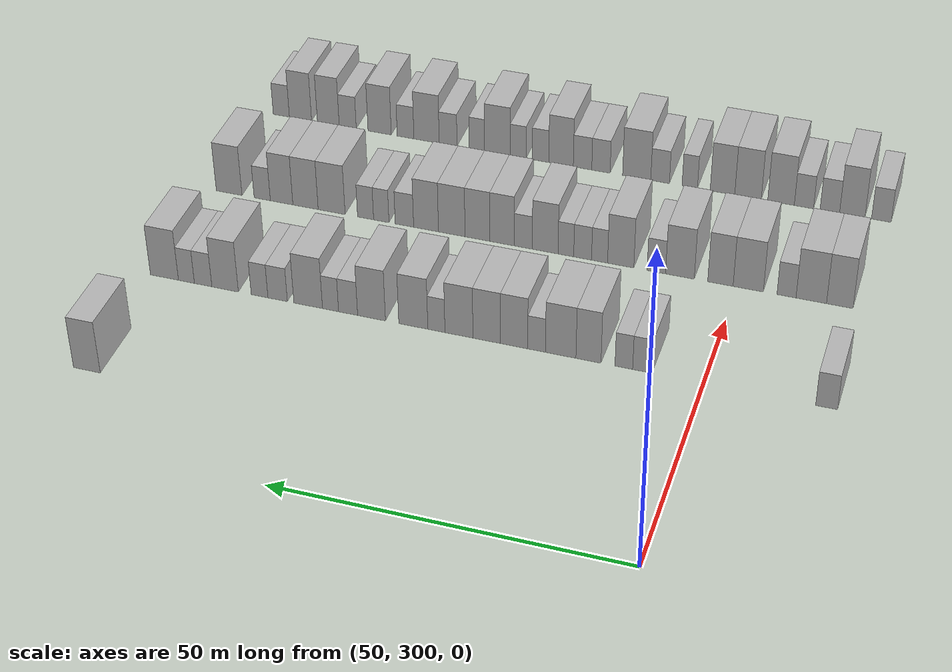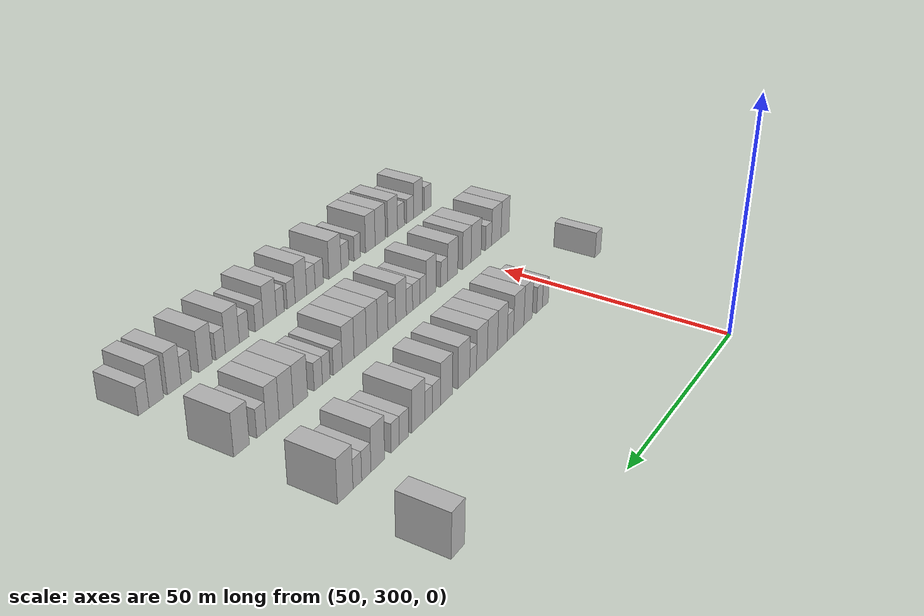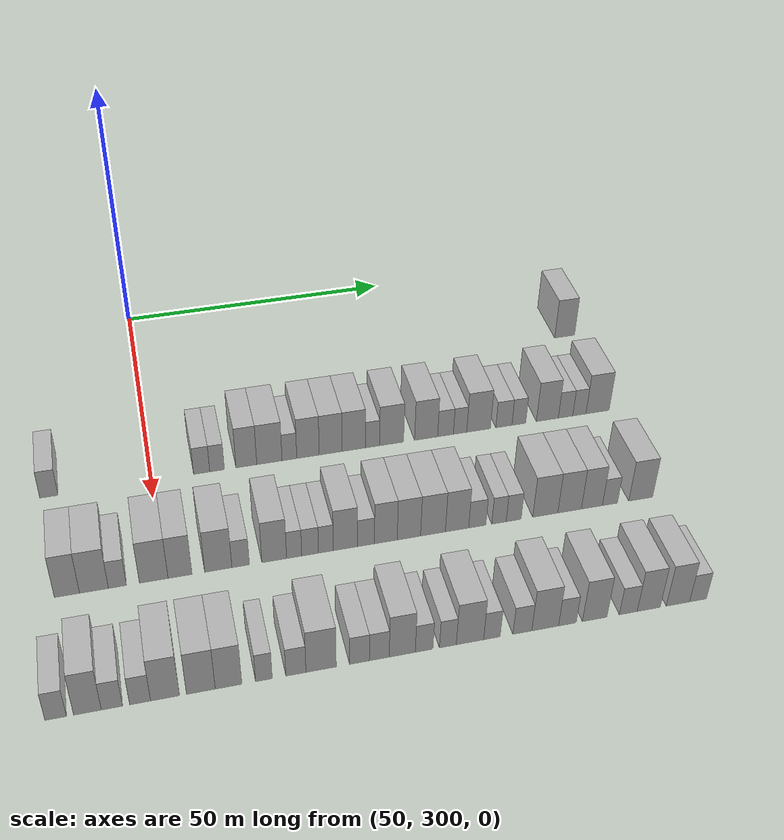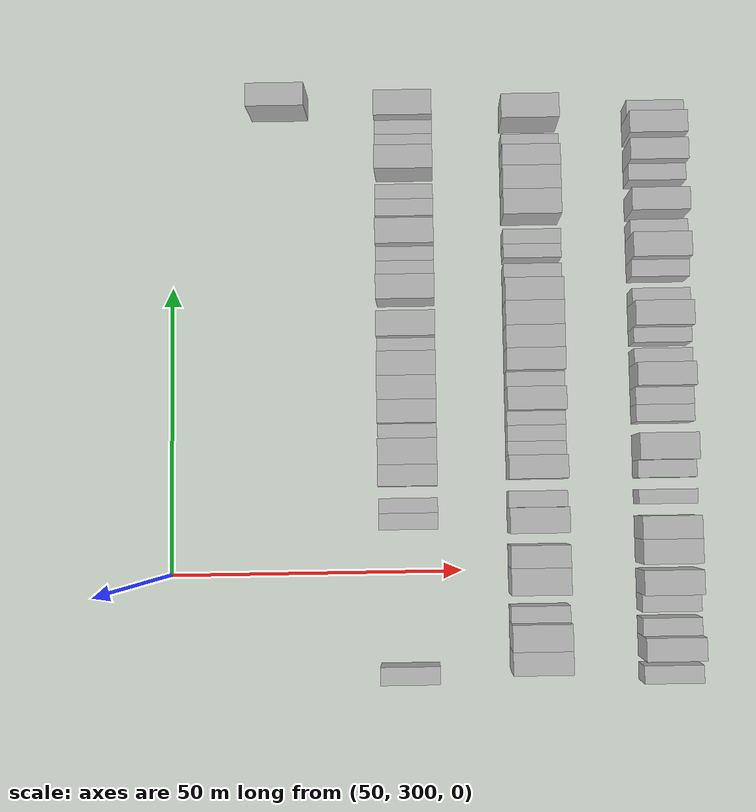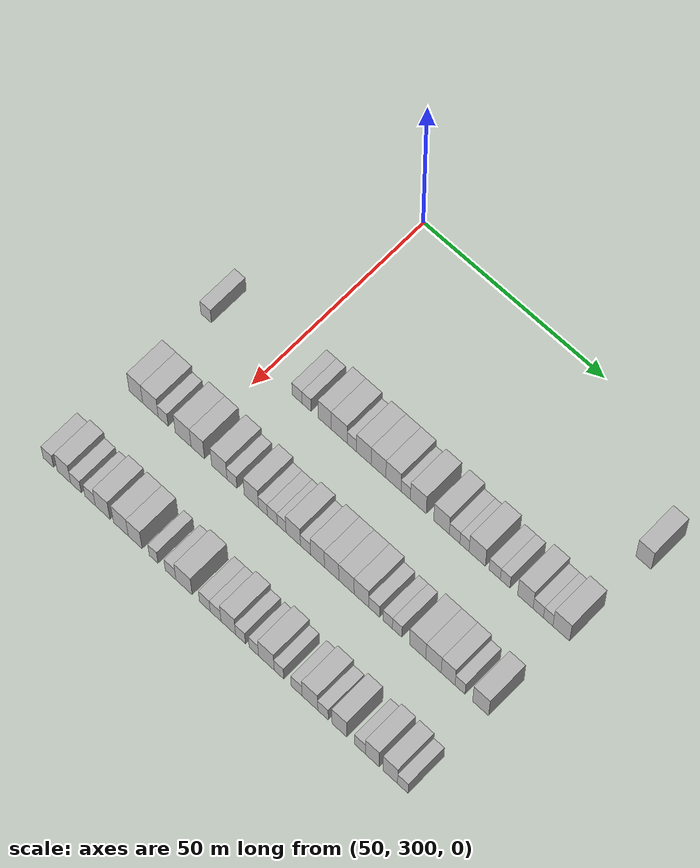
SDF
<sdf version="1.6">
 <world name="default">
  <model name="building_565">
   <static>1</static>
   <pose>69.0000 382.0958 0 0.000000 0.000000 0.000000</pose>
   <link name="link">
    <pose>0 0 4.50 0 0 0</pose>
    <collision name="collision"><geometry><box><size>10.0000 4.0528 9.0000</size></box></geometry></collision>
    <visual name="visual">
     <cast_shadows>0</cast_shadows>
     <geometry><box><size>10.0000 4.0528 9.0000</size></box></geometry>
     <material>
      <script>
       <uri>model://HANNAS_wall/materials/scripts</uri>
       <uri>model://HANNAS_wall/materials/textures</uri>
       <name>vrc/HANNAS_wall</name>
      </script>
     </material>
    </visual>
   </link>
  </model>
  <model name="building_740">
   <static>1</static>
   <pose>91.0000 283.0367 0 0.000000 0.000000 0.000000</pose>
   <link name="link">
    <pose>0 0 3.00 0 0 0</pose>
    <collision name="collision"><geometry><box><size>10.0000 2.9970 6.0000</size></box></geometry></collision>
    <visual name="visual">
     <cast_shadows>0</cast_shadows>
     <geometry><box><size>10.0000 2.9970 6.0000</size></box></geometry>
     <material>
      <script>
       <uri>model://HANNAS_wall/materials/scripts</uri>
       <uri>model://HANNAS_wall/materials/textures</uri>
       <name>vrc/HANNAS_wall</name>
      </script>
     </material>
    </visual>
   </link>
  </model>
  <model name="building_741">
   <static>1</static>
   <pose>91.0000 308.6828 0 0.000000 0.000000 0.000000</pose>
   <link name="link">
    <pose>0 0 3.00 0 0 0</pose>
    <collision name="collision"><geometry><box><size>10.0000 2.7650 6.0000</size></box></geometry></collision>
    <visual name="visual">
     <cast_shadows>0</cast_shadows>
     <geometry><box><size>10.0000 2.7650 6.0000</size></box></geometry>
     <material>
      <script>
       <uri>model://HANNAS_wall/materials/scripts</uri>
       <uri>model://HANNAS_wall/materials/textures</uri>
       <name>vrc/HANNAS_wall</name>
      </script>
     </material>
    </visual>
   </link>
  </model>
  <model name="building_742">
   <static>1</static>
   <pose>91.0000 311.3226 0 0.000000 0.000000 0.000000</pose>
   <link name="link">
    <pose>0 0 3.00 0 0 0</pose>
    <collision name="collision"><geometry><box><size>10.0000 2.5147 6.0000</size></box></geometry></collision>
    <visual name="visual">
     <cast_shadows>0</cast_shadows>
     <geometry><box><size>10.0000 2.5147 6.0000</size></box></geometry>
     <material>
      <script>
       <uri>model://HANNAS_wall/materials/scripts</uri>
       <uri>model://HANNAS_wall/materials/textures</uri>
       <name>vrc/HANNAS_wall</name>
      </script>
     </material>
    </visual>
   </link>
  </model>
  <model name="building_743">
   <static>1</static>
   <pose>91.0000 316.3813 0 0.000000 0.000000 0.000000</pose>
   <link name="link">
    <pose>0 0 4.50 0 0 0</pose>
    <collision name="collision"><geometry><box><size>10.0000 3.6027 9.0000</size></box></geometry></collision>
    <visual name="visual">
     <cast_shadows>0</cast_shadows>
     <geometry><box><size>10.0000 3.6027 9.0000</size></box></geometry>
     <material>
      <script>
       <uri>model://HANNAS_wall/materials/scripts</uri>
       <uri>model://HANNAS_wall/materials/textures</uri>
       <name>vrc/HANNAS_wall</name>
      </script>
     </material>
    </visual>
   </link>
  </model>
  <model name="building_744">
   <static>1</static>
   <pose>91.0000 320.3874 0 0.000000 0.000000 0.000000</pose>
   <link name="link">
    <pose>0 0 4.50 0 0 0</pose>
    <collision name="collision"><geometry><box><size>10.0000 4.4095 9.0000</size></box></geometry></collision>
    <visual name="visual">
     <cast_shadows>0</cast_shadows>
     <geometry><box><size>10.0000 4.4095 9.0000</size></box></geometry>
     <material>
      <script>
       <uri>model://HANNAS_wall/materials/scripts</uri>
       <uri>model://HANNAS_wall/materials/textures</uri>
       <name>vrc/HANNAS_wall</name>
      </script>
     </material>
    </visual>
   </link>
  </model>
  <model name="building_745">
   <static>1</static>
   <pose>91.0000 323.8801 0 0.000000 0.000000 0.000000</pose>
   <link name="link">
    <pose>0 0 3.00 0 0 0</pose>
    <collision name="collision"><geometry><box><size>10.0000 2.5758 6.0000</size></box></geometry></collision>
    <visual name="visual">
     <cast_shadows>0</cast_shadows>
     <geometry><box><size>10.0000 2.5758 6.0000</size></box></geometry>
     <material>
      <script>
       <uri>model://HANNAS_wall/materials/scripts</uri>
       <uri>model://HANNAS_wall/materials/textures</uri>
       <name>vrc/HANNAS_wall</name>
      </script>
     </material>
    </visual>
   </link>
  </model>
  <model name="building_746">
   <static>1</static>
   <pose>91.0000 327.1488 0 0.000000 0.000000 0.000000</pose>
   <link name="link">
    <pose>0 0 4.50 0 0 0</pose>
    <collision name="collision"><geometry><box><size>10.0000 3.9616 9.0000</size></box></geometry></collision>
    <visual name="visual">
     <cast_shadows>0</cast_shadows>
     <geometry><box><size>10.0000 3.9616 9.0000</size></box></geometry>
     <material>
      <script>
       <uri>model://HANNAS_wall/materials/scripts</uri>
       <uri>model://HANNAS_wall/materials/textures</uri>
       <name>vrc/HANNAS_wall</name>
      </script>
     </material>
    </visual>
   </link>
  </model>
  <model name="building_747">
   <static>1</static>
   <pose>91.0000 331.1592 0 0.000000 0.000000 0.000000</pose>
   <link name="link">
    <pose>0 0 4.50 0 0 0</pose>
    <collision name="collision"><geometry><box><size>10.0000 4.0594 9.0000</size></box></geometry></collision>
    <visual name="visual">
     <cast_shadows>0</cast_shadows>
     <geometry><box><size>10.0000 4.0594 9.0000</size></box></geometry>
     <material>
      <script>
       <uri>model://HANNAS_wall/materials/scripts</uri>
       <uri>model://HANNAS_wall/materials/textures</uri>
       <name>vrc/HANNAS_wall</name>
      </script>
     </material>
    </visual>
   </link>
  </model>
  <model name="building_748">
   <static>1</static>
   <pose>91.0000 335.2609 0 0.000000 0.000000 0.000000</pose>
   <link name="link">
    <pose>0 0 4.50 0 0 0</pose>
    <collision name="collision"><geometry><box><size>10.0000 4.1440 9.0000</size></box></geometry></collision>
    <visual name="visual">
     <cast_shadows>0</cast_shadows>
     <geometry><box><size>10.0000 4.1440 9.0000</size></box></geometry>
     <material>
      <script>
       <uri>model://HANNAS_wall/materials/scripts</uri>
       <uri>model://HANNAS_wall/materials/textures</uri>
       <name>vrc/HANNAS_wall</name>
      </script>
     </material>
    </visual>
   </link>
  </model>
  <model name="building_749">
   <static>1</static>
   <pose>91.0000 338.6061 0 0.000000 0.000000 0.000000</pose>
   <link name="link">
    <pose>0 0 3.00 0 0 0</pose>
    <collision name="collision"><geometry><box><size>10.0000 2.5464 6.0000</size></box></geometry></collision>
    <visual name="visual">
     <cast_shadows>0</cast_shadows>
     <geometry><box><size>10.0000 2.5464 6.0000</size></box></geometry>
     <material>
      <script>
       <uri>model://HANNAS_wall/materials/scripts</uri>
       <uri>model://HANNAS_wall/materials/textures</uri>
       <name>vrc/HANNAS_wall</name>
      </script>
     </material>
    </visual>
   </link>
  </model>
  <model name="building_750">
   <static>1</static>
   <pose>91.0000 342.0485 0 0.000000 0.000000 0.000000</pose>
   <link name="link">
    <pose>0 0 4.50 0 0 0</pose>
    <collision name="collision"><geometry><box><size>10.0000 4.3385 9.0000</size></box></geometry></collision>
    <visual name="visual">
     <cast_shadows>0</cast_shadows>
     <geometry><box><size>10.0000 4.3385 9.0000</size></box></geometry>
     <material>
      <script>
       <uri>model://HANNAS_wall/materials/scripts</uri>
       <uri>model://HANNAS_wall/materials/textures</uri>
       <name>vrc/HANNAS_wall</name>
      </script>
     </material>
    </visual>
   </link>
  </model>
  <model name="building_751">
   <static>1</static>
   <pose>91.0000 348.3240 0 0.000000 0.000000 0.000000</pose>
   <link name="link">
    <pose>0 0 4.50 0 0 0</pose>
    <collision name="collision"><geometry><box><size>10.0000 4.2125 9.0000</size></box></geometry></collision>
    <visual name="visual">
     <cast_shadows>0</cast_shadows>
     <geometry><box><size>10.0000 4.2125 9.0000</size></box></geometry>
     <material>
      <script>
       <uri>model://HANNAS_wall/materials/scripts</uri>
       <uri>model://HANNAS_wall/materials/textures</uri>
       <name>vrc/HANNAS_wall</name>
      </script>
     </material>
    </visual>
   </link>
  </model>
  <model name="building_752">
   <static>1</static>
   <pose>91.0000 351.8712 0 0.000000 0.000000 0.000000</pose>
   <link name="link">
    <pose>0 0 3.00 0 0 0</pose>
    <collision name="collision"><geometry><box><size>10.0000 2.8819 6.0000</size></box></geometry></collision>
    <visual name="visual">
     <cast_shadows>0</cast_shadows>
     <geometry><box><size>10.0000 2.8819 6.0000</size></box></geometry>
     <material>
      <script>
       <uri>model://HANNAS_wall/materials/scripts</uri>
       <uri>model://HANNAS_wall/materials/textures</uri>
       <name>vrc/HANNAS_wall</name>
      </script>
     </material>
    </visual>
   </link>
  </model>
  <model name="building_753">
   <static>1</static>
   <pose>91.0000 354.5384 0 0.000000 0.000000 0.000000</pose>
   <link name="link">
    <pose>0 0 3.00 0 0 0</pose>
    <collision name="collision"><geometry><box><size>10.0000 2.4525 6.0000</size></box></geometry></collision>
    <visual name="visual">
     <cast_shadows>0</cast_shadows>
     <geometry><box><size>10.0000 2.4525 6.0000</size></box></geometry>
     <material>
      <script>
       <uri>model://HANNAS_wall/materials/scripts</uri>
       <uri>model://HANNAS_wall/materials/textures</uri>
       <name>vrc/HANNAS_wall</name>
      </script>
     </material>
    </visual>
   </link>
  </model>
  <model name="building_754">
   <static>1</static>
   <pose>91.0000 357.9547 0 0.000000 0.000000 0.000000</pose>
   <link name="link">
    <pose>0 0 4.50 0 0 0</pose>
    <collision name="collision"><geometry><box><size>10.0000 4.3802 9.0000</size></box></geometry></collision>
    <visual name="visual">
     <cast_shadows>0</cast_shadows>
     <geometry><box><size>10.0000 4.3802 9.0000</size></box></geometry>
     <material>
      <script>
       <uri>model://HANNAS_wall/materials/scripts</uri>
       <uri>model://HANNAS_wall/materials/textures</uri>
       <name>vrc/HANNAS_wall</name>
      </script>
     </material>
    </visual>
   </link>
  </model>
  <model name="building_755">
   <static>1</static>
   <pose>91.0000 362.6447 0 0.000000 0.000000 0.000000</pose>
   <link name="link">
    <pose>0 0 3.00 0 0 0</pose>
    <collision name="collision"><geometry><box><size>10.0000 2.9997 6.0000</size></box></geometry></collision>
    <visual name="visual">
     <cast_shadows>0</cast_shadows>
     <geometry><box><size>10.0000 2.9997 6.0000</size></box></geometry>
     <material>
      <script>
       <uri>model://HANNAS_wall/materials/scripts</uri>
       <uri>model://HANNAS_wall/materials/textures</uri>
       <name>vrc/HANNAS_wall</name>
      </script>
     </material>
    </visual>
   </link>
  </model>
  <model name="building_756">
   <static>1</static>
   <pose>91.0000 365.4371 0 0.000000 0.000000 0.000000</pose>
   <link name="link">
    <pose>0 0 3.00 0 0 0</pose>
    <collision name="collision"><geometry><box><size>10.0000 2.5852 6.0000</size></box></geometry></collision>
    <visual name="visual">
     <cast_shadows>0</cast_shadows>
     <geometry><box><size>10.0000 2.5852 6.0000</size></box></geometry>
     <material>
      <script>
       <uri>model://HANNAS_wall/materials/scripts</uri>
       <uri>model://HANNAS_wall/materials/textures</uri>
       <name>vrc/HANNAS_wall</name>
      </script>
     </material>
    </visual>
   </link>
  </model>
  <model name="building_757">
   <static>1</static>
   <pose>91.0000 370.7987 0 0.000000 0.000000 0.000000</pose>
   <link name="link">
    <pose>0 0 4.50 0 0 0</pose>
    <collision name="collision"><geometry><box><size>10.0000 4.1378 9.0000</size></box></geometry></collision>
    <visual name="visual">
     <cast_shadows>0</cast_shadows>
     <geometry><box><size>10.0000 4.1378 9.0000</size></box></geometry>
     <material>
      <script>
       <uri>model://HANNAS_wall/materials/scripts</uri>
       <uri>model://HANNAS_wall/materials/textures</uri>
       <name>vrc/HANNAS_wall</name>
      </script>
     </material>
    </visual>
   </link>
  </model>
  <model name="building_758">
   <static>1</static>
   <pose>91.0000 374.2376 0 0.000000 0.000000 0.000000</pose>
   <link name="link">
    <pose>0 0 3.00 0 0 0</pose>
    <collision name="collision"><geometry><box><size>10.0000 2.7400 6.0000</size></box></geometry></collision>
    <visual name="visual">
     <cast_shadows>0</cast_shadows>
     <geometry><box><size>10.0000 2.7400 6.0000</size></box></geometry>
     <material>
      <script>
       <uri>model://HANNAS_wall/materials/scripts</uri>
       <uri>model://HANNAS_wall/materials/textures</uri>
       <name>vrc/HANNAS_wall</name>
      </script>
     </material>
    </visual>
   </link>
  </model>
  <model name="building_759">
   <static>1</static>
   <pose>91.0000 376.8636 0 0.000000 0.000000 0.000000</pose>
   <link name="link">
    <pose>0 0 3.00 0 0 0</pose>
    <collision name="collision"><geometry><box><size>10.0000 2.5119 6.0000</size></box></geometry></collision>
    <visual name="visual">
     <cast_shadows>0</cast_shadows>
     <geometry><box><size>10.0000 2.5119 6.0000</size></box></geometry>
     <material>
      <script>
       <uri>model://HANNAS_wall/materials/scripts</uri>
       <uri>model://HANNAS_wall/materials/textures</uri>
       <name>vrc/HANNAS_wall</name>
      </script>
     </material>
    </visual>
   </link>
  </model>
  <model name="building_760">
   <static>1</static>
   <pose>91.0000 380.3342 0 0.000000 0.000000 0.000000</pose>
   <link name="link">
    <pose>0 0 4.50 0 0 0</pose>
    <collision name="collision"><geometry><box><size>10.0000 4.4294 9.0000</size></box></geometry></collision>
    <visual name="visual">
     <cast_shadows>0</cast_shadows>
     <geometry><box><size>10.0000 4.4294 9.0000</size></box></geometry>
     <material>
      <script>
       <uri>model://HANNAS_wall/materials/scripts</uri>
       <uri>model://HANNAS_wall/materials/textures</uri>
       <name>vrc/HANNAS_wall</name>
      </script>
     </material>
    </visual>
   </link>
  </model>
  <model name="building_932">
   <static>1</static>
   <pose>113.0000 285.0774 0 0.000000 0.000000 0.000000</pose>
   <link name="link">
    <pose>0 0 4.50 0 0 0</pose>
    <collision name="collision"><geometry><box><size>10.0000 3.8269 9.0000</size></box></geometry></collision>
    <visual name="visual">
     <cast_shadows>0</cast_shadows>
     <geometry><box><size>10.0000 3.8269 9.0000</size></box></geometry>
     <material>
      <script>
       <uri>model://HANNAS_wall/materials/scripts</uri>
       <uri>model://HANNAS_wall/materials/textures</uri>
       <name>vrc/HANNAS_wall</name>
      </script>
     </material>
    </visual>
   </link>
  </model>
  <model name="building_933">
   <static>1</static>
   <pose>113.0000 289.2033 0 0.000000 0.000000 0.000000</pose>
   <link name="link">
    <pose>0 0 4.50 0 0 0</pose>
    <collision name="collision"><geometry><box><size>10.0000 4.4250 9.0000</size></box></geometry></collision>
    <visual name="visual">
     <cast_shadows>0</cast_shadows>
     <geometry><box><size>10.0000 4.4250 9.0000</size></box></geometry>
     <material>
      <script>
       <uri>model://HANNAS_wall/materials/scripts</uri>
       <uri>model://HANNAS_wall/materials/textures</uri>
       <name>vrc/HANNAS_wall</name>
      </script>
     </material>
    </visual>
   </link>
  </model>
  <model name="building_934">
   <static>1</static>
   <pose>113.0000 292.8037 0 0.000000 0.000000 0.000000</pose>
   <link name="link">
    <pose>0 0 3.00 0 0 0</pose>
    <collision name="collision"><geometry><box><size>10.0000 2.7757 6.0000</size></box></geometry></collision>
    <visual name="visual">
     <cast_shadows>0</cast_shadows>
     <geometry><box><size>10.0000 2.7757 6.0000</size></box></geometry>
     <material>
      <script>
       <uri>model://HANNAS_wall/materials/scripts</uri>
       <uri>model://HANNAS_wall/materials/textures</uri>
       <name>vrc/HANNAS_wall</name>
      </script>
     </material>
    </visual>
   </link>
  </model>
  <model name="building_935">
   <static>1</static>
   <pose>113.0000 298.4188 0 0.000000 0.000000 0.000000</pose>
   <link name="link">
    <pose>0 0 4.50 0 0 0</pose>
    <collision name="collision"><geometry><box><size>10.0000 4.4543 9.0000</size></box></geometry></collision>
    <visual name="visual">
     <cast_shadows>0</cast_shadows>
     <geometry><box><size>10.0000 4.4543 9.0000</size></box></geometry>
     <material>
      <script>
       <uri>model://HANNAS_wall/materials/scripts</uri>
       <uri>model://HANNAS_wall/materials/textures</uri>
       <name>vrc/HANNAS_wall</name>
      </script>
     </material>
    </visual>
   </link>
  </model>
  <model name="building_936">
   <static>1</static>
   <pose>113.0000 302.5252 0 0.000000 0.000000 0.000000</pose>
   <link name="link">
    <pose>0 0 4.50 0 0 0</pose>
    <collision name="collision"><geometry><box><size>10.0000 3.7585 9.0000</size></box></geometry></collision>
    <visual name="visual">
     <cast_shadows>0</cast_shadows>
     <geometry><box><size>10.0000 3.7585 9.0000</size></box></geometry>
     <material>
      <script>
       <uri>model://HANNAS_wall/materials/scripts</uri>
       <uri>model://HANNAS_wall/materials/textures</uri>
       <name>vrc/HANNAS_wall</name>
      </script>
     </material>
    </visual>
   </link>
  </model>
  <model name="building_937">
   <static>1</static>
   <pose>113.0000 308.5507 0 0.000000 0.000000 0.000000</pose>
   <link name="link">
    <pose>0 0 4.50 0 0 0</pose>
    <collision name="collision"><geometry><box><size>10.0000 4.2925 9.0000</size></box></geometry></collision>
    <visual name="visual">
     <cast_shadows>0</cast_shadows>
     <geometry><box><size>10.0000 4.2925 9.0000</size></box></geometry>
     <material>
      <script>
       <uri>model://HANNAS_wall/materials/scripts</uri>
       <uri>model://HANNAS_wall/materials/textures</uri>
       <name>vrc/HANNAS_wall</name>
      </script>
     </material>
    </visual>
   </link>
  </model>
  <model name="building_938">
   <static>1</static>
   <pose>113.0000 312.0844 0 0.000000 0.000000 0.000000</pose>
   <link name="link">
    <pose>0 0 3.00 0 0 0</pose>
    <collision name="collision"><geometry><box><size>10.0000 2.7751 6.0000</size></box></geometry></collision>
    <visual name="visual">
     <cast_shadows>0</cast_shadows>
     <geometry><box><size>10.0000 2.7751 6.0000</size></box></geometry>
     <material>
      <script>
       <uri>model://HANNAS_wall/materials/scripts</uri>
       <uri>model://HANNAS_wall/materials/textures</uri>
       <name>vrc/HANNAS_wall</name>
      </script>
     </material>
    </visual>
   </link>
  </model>
  <model name="building_939">
   <static>1</static>
   <pose>113.0000 317.4590 0 0.000000 0.000000 0.000000</pose>
   <link name="link">
    <pose>0 0 4.50 0 0 0</pose>
    <collision name="collision"><geometry><box><size>10.0000 3.9742 9.0000</size></box></geometry></collision>
    <visual name="visual">
     <cast_shadows>0</cast_shadows>
     <geometry><box><size>10.0000 3.9742 9.0000</size></box></geometry>
     <material>
      <script>
       <uri>model://HANNAS_wall/materials/scripts</uri>
       <uri>model://HANNAS_wall/materials/textures</uri>
       <name>vrc/HANNAS_wall</name>
      </script>
     </material>
    </visual>
   </link>
  </model>
  <model name="building_940">
   <static>1</static>
   <pose>113.0000 320.6649 0 0.000000 0.000000 0.000000</pose>
   <link name="link">
    <pose>0 0 3.00 0 0 0</pose>
    <collision name="collision"><geometry><box><size>10.0000 2.4376 6.0000</size></box></geometry></collision>
    <visual name="visual">
     <cast_shadows>0</cast_shadows>
     <geometry><box><size>10.0000 2.4376 6.0000</size></box></geometry>
     <material>
      <script>
       <uri>model://HANNAS_wall/materials/scripts</uri>
       <uri>model://HANNAS_wall/materials/textures</uri>
       <name>vrc/HANNAS_wall</name>
      </script>
     </material>
    </visual>
   </link>
  </model>
  <model name="building_941">
   <static>1</static>
   <pose>113.0000 323.2427 0 0.000000 0.000000 0.000000</pose>
   <link name="link">
    <pose>0 0 3.00 0 0 0</pose>
    <collision name="collision"><geometry><box><size>10.0000 2.7180 6.0000</size></box></geometry></collision>
    <visual name="visual">
     <cast_shadows>0</cast_shadows>
     <geometry><box><size>10.0000 2.7180 6.0000</size></box></geometry>
     <material>
      <script>
       <uri>model://HANNAS_wall/materials/scripts</uri>
       <uri>model://HANNAS_wall/materials/textures</uri>
       <name>vrc/HANNAS_wall</name>
      </script>
     </material>
    </visual>
   </link>
  </model>
  <model name="building_942">
   <static>1</static>
   <pose>113.0000 325.8022 0 0.000000 0.000000 0.000000</pose>
   <link name="link">
    <pose>0 0 3.00 0 0 0</pose>
    <collision name="collision"><geometry><box><size>10.0000 2.4008 6.0000</size></box></geometry></collision>
    <visual name="visual">
     <cast_shadows>0</cast_shadows>
     <geometry><box><size>10.0000 2.4008 6.0000</size></box></geometry>
     <material>
      <script>
       <uri>model://HANNAS_wall/materials/scripts</uri>
       <uri>model://HANNAS_wall/materials/textures</uri>
       <name>vrc/HANNAS_wall</name>
      </script>
     </material>
    </visual>
   </link>
  </model>
  <model name="building_943">
   <static>1</static>
   <pose>113.0000 328.9836 0 0.000000 0.000000 0.000000</pose>
   <link name="link">
    <pose>0 0 4.50 0 0 0</pose>
    <collision name="collision"><geometry><box><size>10.0000 3.9621 9.0000</size></box></geometry></collision>
    <visual name="visual">
     <cast_shadows>0</cast_shadows>
     <geometry><box><size>10.0000 3.9621 9.0000</size></box></geometry>
     <material>
      <script>
       <uri>model://HANNAS_wall/materials/scripts</uri>
       <uri>model://HANNAS_wall/materials/textures</uri>
       <name>vrc/HANNAS_wall</name>
      </script>
     </material>
    </visual>
   </link>
  </model>
  <model name="building_944">
   <static>1</static>
   <pose>113.0000 332.3561 0 0.000000 0.000000 0.000000</pose>
   <link name="link">
    <pose>0 0 3.00 0 0 0</pose>
    <collision name="collision"><geometry><box><size>10.0000 2.7828 6.0000</size></box></geometry></collision>
    <visual name="visual">
     <cast_shadows>0</cast_shadows>
     <geometry><box><size>10.0000 2.7828 6.0000</size></box></geometry>
     <material>
      <script>
       <uri>model://HANNAS_wall/materials/scripts</uri>
       <uri>model://HANNAS_wall/materials/textures</uri>
       <name>vrc/HANNAS_wall</name>
      </script>
     </material>
    </visual>
   </link>
  </model>
  <model name="building_945">
   <static>1</static>
   <pose>113.0000 335.6398 0 0.000000 0.000000 0.000000</pose>
   <link name="link">
    <pose>0 0 4.50 0 0 0</pose>
    <collision name="collision"><geometry><box><size>10.0000 3.7846 9.0000</size></box></geometry></collision>
    <visual name="visual">
     <cast_shadows>0</cast_shadows>
     <geometry><box><size>10.0000 3.7846 9.0000</size></box></geometry>
     <material>
      <script>
       <uri>model://HANNAS_wall/materials/scripts</uri>
       <uri>model://HANNAS_wall/materials/textures</uri>
       <name>vrc/HANNAS_wall</name>
      </script>
     </material>
    </visual>
   </link>
  </model>
  <model name="building_946">
   <static>1</static>
   <pose>113.0000 339.4766 0 0.000000 0.000000 0.000000</pose>
   <link name="link">
    <pose>0 0 4.50 0 0 0</pose>
    <collision name="collision"><geometry><box><size>10.0000 3.8890 9.0000</size></box></geometry></collision>
    <visual name="visual">
     <cast_shadows>0</cast_shadows>
     <geometry><box><size>10.0000 3.8890 9.0000</size></box></geometry>
     <material>
      <script>
       <uri>model://HANNAS_wall/materials/scripts</uri>
       <uri>model://HANNAS_wall/materials/textures</uri>
       <name>vrc/HANNAS_wall</name>
      </script>
     </material>
    </visual>
   </link>
  </model>
  <model name="building_947">
   <static>1</static>
   <pose>113.0000 343.5120 0 0.000000 0.000000 0.000000</pose>
   <link name="link">
    <pose>0 0 4.50 0 0 0</pose>
    <collision name="collision"><geometry><box><size>10.0000 4.1819 9.0000</size></box></geometry></collision>
    <visual name="visual">
     <cast_shadows>0</cast_shadows>
     <geometry><box><size>10.0000 4.1819 9.0000</size></box></geometry>
     <material>
      <script>
       <uri>model://HANNAS_wall/materials/scripts</uri>
       <uri>model://HANNAS_wall/materials/textures</uri>
       <name>vrc/HANNAS_wall</name>
      </script>
     </material>
    </visual>
   </link>
  </model>
  <model name="building_948">
   <static>1</static>
   <pose>113.0000 347.5703 0 0.000000 0.000000 0.000000</pose>
   <link name="link">
    <pose>0 0 4.50 0 0 0</pose>
    <collision name="collision"><geometry><box><size>10.0000 3.9347 9.0000</size></box></geometry></collision>
    <visual name="visual">
     <cast_shadows>0</cast_shadows>
     <geometry><box><size>10.0000 3.9347 9.0000</size></box></geometry>
     <material>
      <script>
       <uri>model://HANNAS_wall/materials/scripts</uri>
       <uri>model://HANNAS_wall/materials/textures</uri>
       <name>vrc/HANNAS_wall</name>
      </script>
     </material>
    </visual>
   </link>
  </model>
  <model name="building_949">
   <static>1</static>
   <pose>113.0000 350.9979 0 0.000000 0.000000 0.000000</pose>
   <link name="link">
    <pose>0 0 3.00 0 0 0</pose>
    <collision name="collision"><geometry><box><size>10.0000 2.9205 6.0000</size></box></geometry></collision>
    <visual name="visual">
     <cast_shadows>0</cast_shadows>
     <geometry><box><size>10.0000 2.9205 6.0000</size></box></geometry>
     <material>
      <script>
       <uri>model://HANNAS_wall/materials/scripts</uri>
       <uri>model://HANNAS_wall/materials/textures</uri>
       <name>vrc/HANNAS_wall</name>
      </script>
     </material>
    </visual>
   </link>
  </model>
  <model name="building_950">
   <static>1</static>
   <pose>113.0000 354.6879 0 0.000000 0.000000 0.000000</pose>
   <link name="link">
    <pose>0 0 3.00 0 0 0</pose>
    <collision name="collision"><geometry><box><size>10.0000 2.4596 6.0000</size></box></geometry></collision>
    <visual name="visual">
     <cast_shadows>0</cast_shadows>
     <geometry><box><size>10.0000 2.4596 6.0000</size></box></geometry>
     <material>
      <script>
       <uri>model://HANNAS_wall/materials/scripts</uri>
       <uri>model://HANNAS_wall/materials/textures</uri>
       <name>vrc/HANNAS_wall</name>
      </script>
     </material>
    </visual>
   </link>
  </model>
  <model name="building_951">
   <static>1</static>
   <pose>113.0000 357.2023 0 0.000000 0.000000 0.000000</pose>
   <link name="link">
    <pose>0 0 3.00 0 0 0</pose>
    <collision name="collision"><geometry><box><size>10.0000 2.5690 6.0000</size></box></geometry></collision>
    <visual name="visual">
     <cast_shadows>0</cast_shadows>
     <geometry><box><size>10.0000 2.5690 6.0000</size></box></geometry>
     <material>
      <script>
       <uri>model://HANNAS_wall/materials/scripts</uri>
       <uri>model://HANNAS_wall/materials/textures</uri>
       <name>vrc/HANNAS_wall</name>
      </script>
     </material>
    </visual>
   </link>
  </model>
  <model name="building_952">
   <static>1</static>
   <pose>113.0000 362.6643 0 0.000000 0.000000 0.000000</pose>
   <link name="link">
    <pose>0 0 4.50 0 0 0</pose>
    <collision name="collision"><geometry><box><size>10.0000 4.3551 9.0000</size></box></geometry></collision>
    <visual name="visual">
     <cast_shadows>0</cast_shadows>
     <geometry><box><size>10.0000 4.3551 9.0000</size></box></geometry>
     <material>
      <script>
       <uri>model://HANNAS_wall/materials/scripts</uri>
       <uri>model://HANNAS_wall/materials/textures</uri>
       <name>vrc/HANNAS_wall</name>
      </script>
     </material>
    </visual>
   </link>
  </model>
  <model name="building_953">
   <static>1</static>
   <pose>113.0000 366.8980 0 0.000000 0.000000 0.000000</pose>
   <link name="link">
    <pose>0 0 4.50 0 0 0</pose>
    <collision name="collision"><geometry><box><size>10.0000 4.1123 9.0000</size></box></geometry></collision>
    <visual name="visual">
     <cast_shadows>0</cast_shadows>
     <geometry><box><size>10.0000 4.1123 9.0000</size></box></geometry>
     <material>
      <script>
       <uri>model://HANNAS_wall/materials/scripts</uri>
       <uri>model://HANNAS_wall/materials/textures</uri>
       <name>vrc/HANNAS_wall</name>
      </script>
     </material>
    </visual>
   </link>
  </model>
  <model name="building_954">
   <static>1</static>
   <pose>113.0000 370.7966 0 0.000000 0.000000 0.000000</pose>
   <link name="link">
    <pose>0 0 4.50 0 0 0</pose>
    <collision name="collision"><geometry><box><size>10.0000 3.6850 9.0000</size></box></geometry></collision>
    <visual name="visual">
     <cast_shadows>0</cast_shadows>
     <geometry><box><size>10.0000 3.6850 9.0000</size></box></geometry>
     <material>
      <script>
       <uri>model://HANNAS_wall/materials/scripts</uri>
       <uri>model://HANNAS_wall/materials/textures</uri>
       <name>vrc/HANNAS_wall</name>
      </script>
     </material>
    </visual>
   </link>
  </model>
  <model name="building_955">
   <static>1</static>
   <pose>113.0000 373.9694 0 0.000000 0.000000 0.000000</pose>
   <link name="link">
    <pose>0 0 3.00 0 0 0</pose>
    <collision name="collision"><geometry><box><size>10.0000 2.6606 6.0000</size></box></geometry></collision>
    <visual name="visual">
     <cast_shadows>0</cast_shadows>
     <geometry><box><size>10.0000 2.6606 6.0000</size></box></geometry>
     <material>
      <script>
       <uri>model://HANNAS_wall/materials/scripts</uri>
       <uri>model://HANNAS_wall/materials/textures</uri>
       <name>vrc/HANNAS_wall</name>
      </script>
     </material>
    </visual>
   </link>
  </model>
  <model name="building_956">
   <static>1</static>
   <pose>113.0000 379.4231 0 0.000000 0.000000 0.000000</pose>
   <link name="link">
    <pose>0 0 4.50 0 0 0</pose>
    <collision name="collision"><geometry><box><size>10.0000 4.2468 9.0000</size></box></geometry></collision>
    <visual name="visual">
     <cast_shadows>0</cast_shadows>
     <geometry><box><size>10.0000 4.2468 9.0000</size></box></geometry>
     <material>
      <script>
       <uri>model://HANNAS_wall/materials/scripts</uri>
       <uri>model://HANNAS_wall/materials/textures</uri>
       <name>vrc/HANNAS_wall</name>
      </script>
     </material>
    </visual>
   </link>
  </model>
  <model name="building_1121">
   <static>1</static>
   <pose>135.0000 282.5866 0 0.000000 0.000000 0.000000</pose>
   <link name="link">
    <pose>0 0 3.00 0 0 0</pose>
    <collision name="collision"><geometry><box><size>10.0000 2.9673 6.0000</size></box></geometry></collision>
    <visual name="visual">
     <cast_shadows>0</cast_shadows>
     <geometry><box><size>10.0000 2.9673 6.0000</size></box></geometry>
     <material>
      <script>
       <uri>model://HANNAS_wall/materials/scripts</uri>
       <uri>model://HANNAS_wall/materials/textures</uri>
       <name>vrc/HANNAS_wall</name>
      </script>
     </material>
    </visual>
   </link>
  </model>
  <model name="building_1122">
   <static>1</static>
   <pose>135.0000 287.0010 0 0.000000 0.000000 0.000000</pose>
   <link name="link">
    <pose>0 0 4.50 0 0 0</pose>
    <collision name="collision"><geometry><box><size>10.0000 3.8615 9.0000</size></box></geometry></collision>
    <visual name="visual">
     <cast_shadows>0</cast_shadows>
     <geometry><box><size>10.0000 3.8615 9.0000</size></box></geometry>
     <material>
      <script>
       <uri>model://HANNAS_wall/materials/scripts</uri>
       <uri>model://HANNAS_wall/materials/textures</uri>
       <name>vrc/HANNAS_wall</name>
      </script>
     </material>
    </visual>
   </link>
  </model>
  <model name="building_1123">
   <static>1</static>
   <pose>135.0000 290.4216 0 0.000000 0.000000 0.000000</pose>
   <link name="link">
    <pose>0 0 3.00 0 0 0</pose>
    <collision name="collision"><geometry><box><size>10.0000 2.9798 6.0000</size></box></geometry></collision>
    <visual name="visual">
     <cast_shadows>0</cast_shadows>
     <geometry><box><size>10.0000 2.9798 6.0000</size></box></geometry>
     <material>
      <script>
       <uri>model://HANNAS_wall/materials/scripts</uri>
       <uri>model://HANNAS_wall/materials/textures</uri>
       <name>vrc/HANNAS_wall</name>
      </script>
     </material>
    </visual>
   </link>
  </model>
  <model name="building_1124">
   <static>1</static>
   <pose>135.0000 294.3892 0 0.000000 0.000000 0.000000</pose>
   <link name="link">
    <pose>0 0 3.00 0 0 0</pose>
    <collision name="collision"><geometry><box><size>10.0000 2.9553 6.0000</size></box></geometry></collision>
    <visual name="visual">
     <cast_shadows>0</cast_shadows>
     <geometry><box><size>10.0000 2.9553 6.0000</size></box></geometry>
     <material>
      <script>
       <uri>model://HANNAS_wall/materials/scripts</uri>
       <uri>model://HANNAS_wall/materials/textures</uri>
       <name>vrc/HANNAS_wall</name>
      </script>
     </material>
    </visual>
   </link>
  </model>
  <model name="building_1125">
   <static>1</static>
   <pose>135.0000 297.9226 0 0.000000 0.000000 0.000000</pose>
   <link name="link">
    <pose>0 0 4.50 0 0 0</pose>
    <collision name="collision"><geometry><box><size>10.0000 4.1115 9.0000</size></box></geometry></collision>
    <visual name="visual">
     <cast_shadows>0</cast_shadows>
     <geometry><box><size>10.0000 4.1115 9.0000</size></box></geometry>
     <material>
      <script>
       <uri>model://HANNAS_wall/materials/scripts</uri>
       <uri>model://HANNAS_wall/materials/textures</uri>
       <name>vrc/HANNAS_wall</name>
      </script>
     </material>
    </visual>
   </link>
  </model>
  <model name="building_1126">
   <static>1</static>
   <pose>135.0000 303.0449 0 0.000000 0.000000 0.000000</pose>
   <link name="link">
    <pose>0 0 4.50 0 0 0</pose>
    <collision name="collision"><geometry><box><size>10.0000 4.1332 9.0000</size></box></geometry></collision>
    <visual name="visual">
     <cast_shadows>0</cast_shadows>
     <geometry><box><size>10.0000 4.1332 9.0000</size></box></geometry>
     <material>
      <script>
       <uri>model://HANNAS_wall/materials/scripts</uri>
       <uri>model://HANNAS_wall/materials/textures</uri>
       <name>vrc/HANNAS_wall</name>
      </script>
     </material>
    </visual>
   </link>
  </model>
  <model name="building_1127">
   <static>1</static>
   <pose>135.0000 307.0334 0 0.000000 0.000000 0.000000</pose>
   <link name="link">
    <pose>0 0 4.50 0 0 0</pose>
    <collision name="collision"><geometry><box><size>10.0000 3.8437 9.0000</size></box></geometry></collision>
    <visual name="visual">
     <cast_shadows>0</cast_shadows>
     <geometry><box><size>10.0000 3.8437 9.0000</size></box></geometry>
     <material>
      <script>
       <uri>model://HANNAS_wall/materials/scripts</uri>
       <uri>model://HANNAS_wall/materials/textures</uri>
       <name>vrc/HANNAS_wall</name>
      </script>
     </material>
    </visual>
   </link>
  </model>
  <model name="building_1128">
   <static>1</static>
   <pose>135.0000 312.1710 0 0.000000 0.000000 0.000000</pose>
   <link name="link">
    <pose>0 0 3.00 0 0 0</pose>
    <collision name="collision"><geometry><box><size>10.0000 2.4315 6.0000</size></box></geometry></collision>
    <visual name="visual">
     <cast_shadows>0</cast_shadows>
     <geometry><box><size>10.0000 2.4315 6.0000</size></box></geometry>
     <material>
      <script>
       <uri>model://HANNAS_wall/materials/scripts</uri>
       <uri>model://HANNAS_wall/materials/textures</uri>
       <name>vrc/HANNAS_wall</name>
      </script>
     </material>
    </visual>
   </link>
  </model>
  <model name="building_1129">
   <static>1</static>
   <pose>135.0000 316.8689 0 0.000000 0.000000 0.000000</pose>
   <link name="link">
    <pose>0 0 3.00 0 0 0</pose>
    <collision name="collision"><geometry><box><size>10.0000 2.9643 6.0000</size></box></geometry></collision>
    <visual name="visual">
     <cast_shadows>0</cast_shadows>
     <geometry><box><size>10.0000 2.9643 6.0000</size></box></geometry>
     <material>
      <script>
       <uri>model://HANNAS_wall/materials/scripts</uri>
       <uri>model://HANNAS_wall/materials/textures</uri>
       <name>vrc/HANNAS_wall</name>
      </script>
     </material>
    </visual>
   </link>
  </model>
  <model name="building_1130">
   <static>1</static>
   <pose>135.0000 320.5944 0 0.000000 0.000000 0.000000</pose>
   <link name="link">
    <pose>0 0 4.50 0 0 0</pose>
    <collision name="collision"><geometry><box><size>10.0000 4.4867 9.0000</size></box></geometry></collision>
    <visual name="visual">
     <cast_shadows>0</cast_shadows>
     <geometry><box><size>10.0000 4.4867 9.0000</size></box></geometry>
     <material>
      <script>
       <uri>model://HANNAS_wall/materials/scripts</uri>
       <uri>model://HANNAS_wall/materials/textures</uri>
       <name>vrc/HANNAS_wall</name>
      </script>
     </material>
    </visual>
   </link>
  </model>
  <model name="building_1131">
   <static>1</static>
   <pose>135.0000 326.3142 0 0.000000 0.000000 0.000000</pose>
   <link name="link">
    <pose>0 0 3.00 0 0 0</pose>
    <collision name="collision"><geometry><box><size>10.0000 2.9528 6.0000</size></box></geometry></collision>
    <visual name="visual">
     <cast_shadows>0</cast_shadows>
     <geometry><box><size>10.0000 2.9528 6.0000</size></box></geometry>
     <material>
      <script>
       <uri>model://HANNAS_wall/materials/scripts</uri>
       <uri>model://HANNAS_wall/materials/textures</uri>
       <name>vrc/HANNAS_wall</name>
      </script>
     </material>
    </visual>
   </link>
  </model>
  <model name="building_1132">
   <static>1</static>
   <pose>135.0000 329.2833 0 0.000000 0.000000 0.000000</pose>
   <link name="link">
    <pose>0 0 3.00 0 0 0</pose>
    <collision name="collision"><geometry><box><size>10.0000 2.9854 6.0000</size></box></geometry></collision>
    <visual name="visual">
     <cast_shadows>0</cast_shadows>
     <geometry><box><size>10.0000 2.9854 6.0000</size></box></geometry>
     <material>
      <script>
       <uri>model://HANNAS_wall/materials/scripts</uri>
       <uri>model://HANNAS_wall/materials/textures</uri>
       <name>vrc/HANNAS_wall</name>
      </script>
     </material>
    </visual>
   </link>
  </model>
  <model name="building_1133">
   <static>1</static>
   <pose>135.0000 332.7592 0 0.000000 0.000000 0.000000</pose>
   <link name="link">
    <pose>0 0 4.50 0 0 0</pose>
    <collision name="collision"><geometry><box><size>10.0000 3.9664 9.0000</size></box></geometry></collision>
    <visual name="visual">
     <cast_shadows>0</cast_shadows>
     <geometry><box><size>10.0000 3.9664 9.0000</size></box></geometry>
     <material>
      <script>
       <uri>model://HANNAS_wall/materials/scripts</uri>
       <uri>model://HANNAS_wall/materials/textures</uri>
       <name>vrc/HANNAS_wall</name>
      </script>
     </material>
    </visual>
   </link>
  </model>
  <model name="building_1134">
   <static>1</static>
   <pose>135.0000 336.0897 0 0.000000 0.000000 0.000000</pose>
   <link name="link">
    <pose>0 0 3.00 0 0 0</pose>
    <collision name="collision"><geometry><box><size>10.0000 2.6946 6.0000</size></box></geometry></collision>
    <visual name="visual">
     <cast_shadows>0</cast_shadows>
     <geometry><box><size>10.0000 2.6946 6.0000</size></box></geometry>
     <material>
      <script>
       <uri>model://HANNAS_wall/materials/scripts</uri>
       <uri>model://HANNAS_wall/materials/textures</uri>
       <name>vrc/HANNAS_wall</name>
      </script>
     </material>
    </visual>
   </link>
  </model>
  <model name="building_1135">
   <static>1</static>
   <pose>135.0000 339.7320 0 0.000000 0.000000 0.000000</pose>
   <link name="link">
    <pose>0 0 3.00 0 0 0</pose>
    <collision name="collision"><geometry><box><size>10.0000 2.5900 6.0000</size></box></geometry></collision>
    <visual name="visual">
     <cast_shadows>0</cast_shadows>
     <geometry><box><size>10.0000 2.5900 6.0000</size></box></geometry>
     <material>
      <script>
       <uri>model://HANNAS_wall/materials/scripts</uri>
       <uri>model://HANNAS_wall/materials/textures</uri>
       <name>vrc/HANNAS_wall</name>
      </script>
     </material>
    </visual>
   </link>
  </model>
  <model name="building_1136">
   <static>1</static>
   <pose>135.0000 343.1468 0 0.000000 0.000000 0.000000</pose>
   <link name="link">
    <pose>0 0 4.50 0 0 0</pose>
    <collision name="collision"><geometry><box><size>10.0000 4.2396 9.0000</size></box></geometry></collision>
    <visual name="visual">
     <cast_shadows>0</cast_shadows>
     <geometry><box><size>10.0000 4.2396 9.0000</size></box></geometry>
     <material>
      <script>
       <uri>model://HANNAS_wall/materials/scripts</uri>
       <uri>model://HANNAS_wall/materials/textures</uri>
       <name>vrc/HANNAS_wall</name>
      </script>
     </material>
    </visual>
   </link>
  </model>
  <model name="building_1137">
   <static>1</static>
   <pose>135.0000 346.5462 0 0.000000 0.000000 0.000000</pose>
   <link name="link">
    <pose>0 0 3.00 0 0 0</pose>
    <collision name="collision"><geometry><box><size>10.0000 2.5592 6.0000</size></box></geometry></collision>
    <visual name="visual">
     <cast_shadows>0</cast_shadows>
     <geometry><box><size>10.0000 2.5592 6.0000</size></box></geometry>
     <material>
      <script>
       <uri>model://HANNAS_wall/materials/scripts</uri>
       <uri>model://HANNAS_wall/materials/textures</uri>
       <name>vrc/HANNAS_wall</name>
      </script>
     </material>
    </visual>
   </link>
  </model>
  <model name="building_1138">
   <static>1</static>
   <pose>135.0000 351.3084 0 0.000000 0.000000 0.000000</pose>
   <link name="link">
    <pose>0 0 3.00 0 0 0</pose>
    <collision name="collision"><geometry><box><size>10.0000 2.9651 6.0000</size></box></geometry></collision>
    <visual name="visual">
     <cast_shadows>0</cast_shadows>
     <geometry><box><size>10.0000 2.9651 6.0000</size></box></geometry>
     <material>
      <script>
       <uri>model://HANNAS_wall/materials/scripts</uri>
       <uri>model://HANNAS_wall/materials/textures</uri>
       <name>vrc/HANNAS_wall</name>
      </script>
     </material>
    </visual>
   </link>
  </model>
  <model name="building_1139">
   <static>1</static>
   <pose>135.0000 354.9049 0 0.000000 0.000000 0.000000</pose>
   <link name="link">
    <pose>0 0 4.50 0 0 0</pose>
    <collision name="collision"><geometry><box><size>10.0000 4.2279 9.0000</size></box></geometry></collision>
    <visual name="visual">
     <cast_shadows>0</cast_shadows>
     <geometry><box><size>10.0000 4.2279 9.0000</size></box></geometry>
     <material>
      <script>
       <uri>model://HANNAS_wall/materials/scripts</uri>
       <uri>model://HANNAS_wall/materials/textures</uri>
       <name>vrc/HANNAS_wall</name>
      </script>
     </material>
    </visual>
   </link>
  </model>
  <model name="building_1140">
   <static>1</static>
   <pose>135.0000 358.4222 0 0.000000 0.000000 0.000000</pose>
   <link name="link">
    <pose>0 0 3.00 0 0 0</pose>
    <collision name="collision"><geometry><box><size>10.0000 2.8066 6.0000</size></box></geometry></collision>
    <visual name="visual">
     <cast_shadows>0</cast_shadows>
     <geometry><box><size>10.0000 2.8066 6.0000</size></box></geometry>
     <material>
      <script>
       <uri>model://HANNAS_wall/materials/scripts</uri>
       <uri>model://HANNAS_wall/materials/textures</uri>
       <name>vrc/HANNAS_wall</name>
      </script>
     </material>
    </visual>
   </link>
  </model>
  <model name="building_1141">
   <static>1</static>
   <pose>135.0000 362.7913 0 0.000000 0.000000 0.000000</pose>
   <link name="link">
    <pose>0 0 4.50 0 0 0</pose>
    <collision name="collision"><geometry><box><size>10.0000 3.9316 9.0000</size></box></geometry></collision>
    <visual name="visual">
     <cast_shadows>0</cast_shadows>
     <geometry><box><size>10.0000 3.9316 9.0000</size></box></geometry>
     <material>
      <script>
       <uri>model://HANNAS_wall/materials/scripts</uri>
       <uri>model://HANNAS_wall/materials/textures</uri>
       <name>vrc/HANNAS_wall</name>
      </script>
     </material>
    </visual>
   </link>
  </model>
  <model name="building_1142">
   <static>1</static>
   <pose>135.0000 368.2075 0 0.000000 0.000000 0.000000</pose>
   <link name="link">
    <pose>0 0 3.00 0 0 0</pose>
    <collision name="collision"><geometry><box><size>10.0000 2.9009 6.0000</size></box></geometry></collision>
    <visual name="visual">
     <cast_shadows>0</cast_shadows>
     <geometry><box><size>10.0000 2.9009 6.0000</size></box></geometry>
     <material>
      <script>
       <uri>model://HANNAS_wall/materials/scripts</uri>
       <uri>model://HANNAS_wall/materials/textures</uri>
       <name>vrc/HANNAS_wall</name>
      </script>
     </material>
    </visual>
   </link>
  </model>
  <model name="building_1143">
   <static>1</static>
   <pose>135.0000 371.5226 0 0.000000 0.000000 0.000000</pose>
   <link name="link">
    <pose>0 0 4.50 0 0 0</pose>
    <collision name="collision"><geometry><box><size>10.0000 3.7293 9.0000</size></box></geometry></collision>
    <visual name="visual">
     <cast_shadows>0</cast_shadows>
     <geometry><box><size>10.0000 3.7293 9.0000</size></box></geometry>
     <material>
      <script>
       <uri>model://HANNAS_wall/materials/scripts</uri>
       <uri>model://HANNAS_wall/materials/textures</uri>
       <name>vrc/HANNAS_wall</name>
      </script>
     </material>
    </visual>
   </link>
  </model>
  <model name="building_1144">
   <static>1</static>
   <pose>135.0000 376.3005 0 0.000000 0.000000 0.000000</pose>
   <link name="link">
    <pose>0 0 4.50 0 0 0</pose>
    <collision name="collision"><geometry><box><size>10.0000 3.8265 9.0000</size></box></geometry></collision>
    <visual name="visual">
     <cast_shadows>0</cast_shadows>
     <geometry><box><size>10.0000 3.8265 9.0000</size></box></geometry>
     <material>
      <script>
       <uri>model://HANNAS_wall/materials/scripts</uri>
       <uri>model://HANNAS_wall/materials/textures</uri>
       <name>vrc/HANNAS_wall</name>
      </script>
     </material>
    </visual>
   </link>
  </model>
  <model name="building_1145">
   <static>1</static>
   <pose>135.0000 379.6019 0 0.000000 0.000000 0.000000</pose>
   <link name="link">
    <pose>0 0 3.00 0 0 0</pose>
    <collision name="collision"><geometry><box><size>10.0000 2.7762 6.0000</size></box></geometry></collision>
    <visual name="visual">
     <cast_shadows>0</cast_shadows>
     <geometry><box><size>10.0000 2.7762 6.0000</size></box></geometry>
     <material>
      <script>
       <uri>model://HANNAS_wall/materials/scripts</uri>
       <uri>model://HANNAS_wall/materials/textures</uri>
       <name>vrc/HANNAS_wall</name>
      </script>
     </material>
    </visual>
   </link>
  </model>
 </world>
</sdf>
